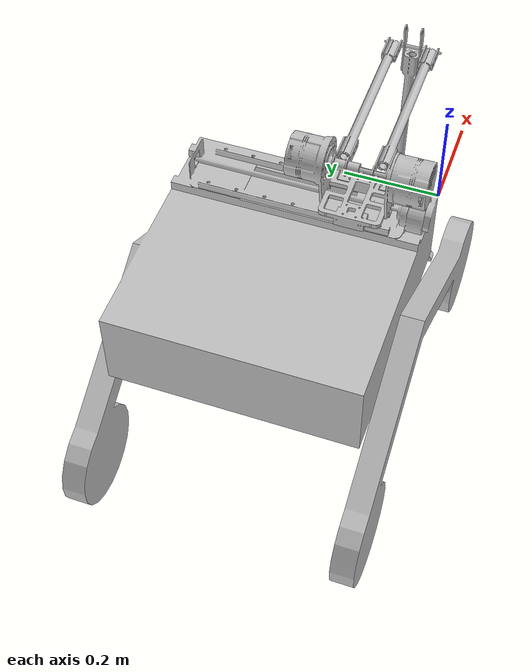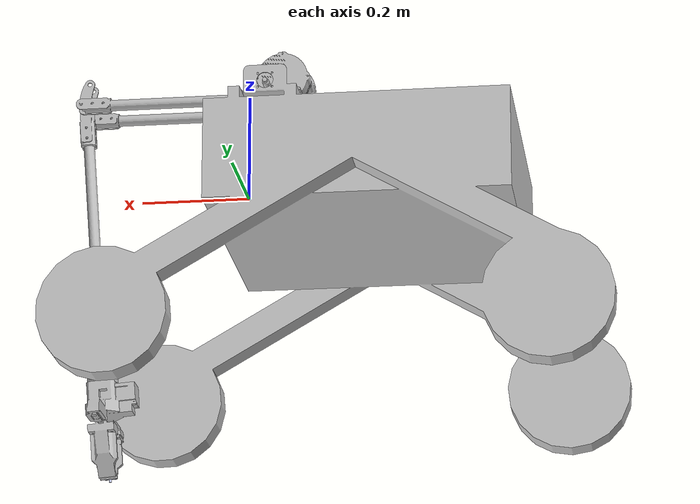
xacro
<?xml version="1.0"?>
<robot xmlns:xacro="http://www.ros.org/wiki/xacro" name="arm_v3">
    <xacro:arg name="initial_positions_file" default="initial_positions.yaml" />

    <!-- Import arm_v3 urdf file -->
    <xacro:include filename="$(find arm_v3)/urdf/arm_v3.urdf" />

    <!-- Import control_xacro -->
    <xacro:include filename="arm_v3.ros2_control.xacro" />

    <xacro:arm_v3_ros2_control name="FakeSystem" initial_positions_file="$(arg initial_positions_file)"/>

</robot>

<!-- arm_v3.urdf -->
<robot
  name="arm_v3">
  <link
    name="link0">
    <inertial>
      <origin
        xyz="-0.251090659205178 0.260128435049847 -0.130847884636194"
        rpy="0 0 0" />
      <mass
        value="60.6958871716405" />
      <inertia
        ixx="2.79606191317483"
        ixy="3.85439821565107E-07"
        ixz="0.0976183373066583"
        iyy="3.07575830053153"
        iyz="4.92814854944356E-07"
        izz="4.35921030434229" />
    </inertial>
    <visual>
      <origin
        xyz="0 0 0"
        rpy="0 0 0" />
      <geometry>
        <mesh
          filename="package://arm_v3/meshes/link0.STL" />
      </geometry>
      <material
        name="">
        <color
          rgba="0.752941176470588 0.752941176470588 0.752941176470588 1" />
      </material>
    </visual>
    <collision>
      <origin
        xyz="0 0 0"
        rpy="0 0 0" />
      <geometry>
        <mesh
          filename="package://arm_v3/meshes/link0.STL" />
      </geometry>
    </collision>
  </link>
  <link
    name="link1">
    <inertial>
      <origin
        xyz="4.0031480939888E-05 -0.035642586815204 0.000678922257745573"
        rpy="0 0 0" />
      <mass
        value="0.478244116351058" />
      <inertia
        ixx="0.000449779643862842"
        ixy="8.4478145908809E-07"
        ixz="-8.12704403358029E-09"
        iyy="0.000588126213744917"
        iyz="1.30199185421708E-08"
        izz="0.000706086171218913" />
    </inertial>
    <visual>
      <origin
        xyz="0 0 0"
        rpy="0 0 0" />
      <geometry>
        <mesh
          filename="package://arm_v3/meshes/link1.STL" />
      </geometry>
      <material
        name="">
        <color
          rgba="0.752941176470588 0.752941176470588 0.752941176470588 1" />
      </material>
    </visual>
    <collision>
      <origin
        xyz="0 0 0"
        rpy="0 0 0" />
      <geometry>
        <mesh
          filename="package://arm_v3/meshes/link1.STL" />
      </geometry>
    </collision>
  </link>
  <joint
    name="Joint1"
    type="prismatic">
    <origin
      xyz="-0.101 0.1416 0.06"
      rpy="-1.5708 0 0" />
    <parent
      link="link0" />
    <child
      link="link1" />
    <axis
      xyz="0 0 1" />
    <limit
      lower="-0.005"
      upper="0.265"
      effort="30"
      velocity="2" />
  </joint>
  <link
    name="link2">
    <inertial>
      <origin
        xyz="0.187948326346529 2.08166817117217E-16 -0.0001721672214893"
        rpy="0 0 0" />
      <mass
        value="0.157877291608978" />
      <inertia
        ixx="2.60456373616675E-05"
        ixy="2.33466430277734E-10"
        ixz="2.27918534324271E-18"
        iyy="0.000848829832045359"
        iyz="-2.97082534014363E-11"
        izz="0.000837396820593812" />
    </inertial>
    <visual>
      <origin
        xyz="0 0 0"
        rpy="0 0 0" />
      <geometry>
        <mesh
          filename="package://arm_v3/meshes/link2.STL" />
      </geometry>
      <material
        name="">
        <color
          rgba="0.752941176470588 0.752941176470588 0.752941176470588 1" />
      </material>
    </visual>
    <collision>
      <origin
        xyz="0 0 0"
        rpy="0 0 0" />
      <geometry>
        <mesh
          filename="package://arm_v3/meshes/link2.STL" />
      </geometry>
    </collision>
  </link>
  <joint
    name="Joint2"
    type="revolute">
    <origin
      xyz="0 -0.067 0"
      rpy="3.1416 0 0" />
    <parent
      link="link1" />
    <child
      link="link2" />
    <axis
      xyz="0 0 1" />
    <limit
      lower="-0.3"
      upper="3.14"
      effort="30"
      velocity="1" />
  </joint>
  <link
    name="link3">
    <inertial>
      <origin
        xyz="0.348175135083634 -4.22417342571951E-05 0.000900843531423862"
        rpy="0 0 0" />
      <mass
        value="0.323819592600619" />
      <inertia
        ixx="0.000134265681035463"
        ixy="-8.93822435553632E-07"
        ixz="2.95002944985626E-07"
        iyy="0.000595550748577075"
        iyz="2.94987492826497E-07"
        izz="0.000616815874843774" />
    </inertial>
    <visual>
      <origin
        xyz="0 0 0"
        rpy="0 0 0" />
      <geometry>
        <mesh
          filename="package://arm_v3/meshes/link3.STL" />
      </geometry>
      <material
        name="">
        <color
          rgba="0.752941176470588 0.752941176470588 0.752941176470588 1" />
      </material>
    </visual>
    <collision>
      <origin
        xyz="0 0 0"
        rpy="0 0 0" />
      <geometry>
        <mesh
          filename="package://arm_v3/meshes/link3.STL" />
      </geometry>
    </collision>
  </link>
  <joint
    name="Joint3"
    type="revolute">
    <origin
      xyz="0.38 0 0"
      rpy="0 0 0" />
    <parent
      link="link2" />
    <child
      link="link3" />
    <axis
      xyz="0 0 1" />
    <limit
      lower="-2.8"
      upper="-0.5"
      effort="30"
      velocity="1" />
  </joint>
  <link
    name="link4">
    <inertial>
      <origin
        xyz="0.0686475844437738 6.89542467470494E-06 0.00534492633402461"
        rpy="0 0 0" />
      <mass
        value="0.0454929980032775" />
      <inertia
        ixx="2.2529161457187E-05"
        ixy="2.89999434352634E-09"
        ixz="3.43437518412773E-06"
        iyy="2.96012406729517E-05"
        iyz="-3.57161747140525E-08"
        izz="2.93547817598039E-05" />
    </inertial>
    <visual>
      <origin
        xyz="0 0 0"
        rpy="0 0 0" />
      <geometry>
        <mesh
          filename="package://arm_v3/meshes/link4.STL" />
      </geometry>
      <material
        name="">
        <color
          rgba="0.752941176470588 0.752941176470588 0.752941176470588 1" />
      </material>
    </visual>
    <collision>
      <origin
        xyz="0 0 0"
        rpy="0 0 0" />
      <geometry>
        <mesh
          filename="package://arm_v3/meshes/link4.STL" />
      </geometry>
    </collision>
  </link>
  <joint
    name="Joint4"
    type="revolute">
    <origin
      xyz="0.42 0 0"
      rpy="0 0 0" />
    <parent
      link="link3" />
    <child
      link="link4" />
    <axis
      xyz="0 0 1" />
    <limit
      lower="-2.34"
      upper="2.34"
      effort="30"
      velocity="1" />
  </joint>
  <link
    name="link5">
    <inertial>
      <origin
        xyz="0.000264785580504856 -0.0107768236032084 0.0946749535225379"
        rpy="0 0 0" />
      <mass
        value="0.329538398062322" />
      <inertia
        ixx="0.000230546266294305"
        ixy="3.01581502188436E-07"
        ixz="1.37509395264184E-07"
        iyy="0.000473403834820231"
        iyz="-1.02601590417029E-05"
        izz="0.000480126563066167" />
    </inertial>
    <visual>
      <origin
        xyz="0 0 0"
        rpy="0 0 0" />
      <geometry>
        <mesh
          filename="package://arm_v3/meshes/link5.STL" />
      </geometry>
      <material
        name="">
        <color
          rgba="0.752941176470588 0.752941176470588 0.752941176470588 1" />
      </material>
    </visual>
    <collision>
      <origin
        xyz="0 0 0"
        rpy="0 0 0" />
      <geometry>
        <mesh
          filename="package://arm_v3/meshes/link5.STL" />
      </geometry>
    </collision>
  </link>
  <joint
    name="Joint5"
    type="continuous">
    <origin
      xyz="0.0405 0 0"
      rpy="0 1.5708 0" />
    <parent
      link="link4" />
    <child
      link="link5" />
    <axis
      xyz="0 0 1" />
    <limit
      lower="-100"
      upper="100"
      effort="30"
      velocity="2" />
  </joint>
  <link
    name="link6">
    <inertial>
      <origin
        xyz="0.021153108358719 0.00021937737665198 -0.066862099604607"
        rpy="0 0 0" />
      <mass
        value="0.0479899579175019" />
      <inertia
        ixx="2.43696645694917E-05"
        ixy="-4.89284253335616E-21"
        ixz="2.92350939700212E-06"
        iyy="2.21626807453364E-05"
        iyz="2.09710323371289E-08"
        izz="1.18502152130745E-05" />
    </inertial>
    <visual>
      <origin
        xyz="0 0 0"
        rpy="0 0 0" />
      <geometry>
        <mesh
          filename="package://arm_v3/meshes/link6.STL" />
      </geometry>
      <material
        name="">
        <color
          rgba="0.752941176470588 0.752941176470588 0.752941176470588 1" />
      </material>
    </visual>
    <collision>
      <origin
        xyz="0 0 0"
        rpy="0 0 0" />
      <geometry>
        <mesh
          filename="package://arm_v3/meshes/link6.STL" />
      </geometry>
    </collision>
  </link>
  <joint
    name="Joint6"
    type="prismatic">
    <origin
      xyz="0.0045 0 0.2282"
      rpy="0 0 0" />
    <parent
      link="link5" />
    <child
      link="link6" />
    <axis
      xyz="1 0 0" />
    <limit
      lower="0"
      upper="0.054"
      effort="30"
      velocity="4" />
    <mimic
      joint="Joint7"
      multiplier="1"
      offset="0" />
  </joint>
  <link
    name="link7">
    <inertial>
      <origin
        xyz="0.0210599721696343 0.000219384673841916 -0.0670349818515534"
        rpy="0 0 0" />
      <mass
        value="0.0482590100516987" />
      <inertia
        ixx="2.40029371617255E-05"
        ixy="-8.2345710853084E-11"
        ixz="2.72664839449111E-06"
        iyy="2.1712774926561E-05"
        iyz="1.81964531031136E-08"
        izz="1.20732312881539E-05" />
    </inertial>
    <visual>
      <origin
        xyz="0 0 0"
        rpy="0 0 0" />
      <geometry>
        <mesh
          filename="package://arm_v3/meshes/link7.STL" />
      </geometry>
      <material
        name="">
        <color
          rgba="0.752941176470588 0.752941176470588 0.752941176470588 1" />
      </material>
    </visual>
    <collision>
      <origin
        xyz="0 0 0"
        rpy="0 0 0" />
      <geometry>
        <mesh
          filename="package://arm_v3/meshes/link7.STL" />
      </geometry>
    </collision>
  </link>
  <joint
    name="Joint7"
    type="prismatic">
    <origin
      xyz="-0.0035 0 0.2282"
      rpy="0 0 -3.1416" />
    <parent
      link="link5" />
    <child
      link="link7" />
    <axis
      xyz="1 0 0" />
    <limit
      lower="0"
      upper="0.054"
      effort="30"
      velocity="1" />
  </joint>
  <link
    name="link8">
    <inertial>
      <origin
        xyz="3.2752E-15 5.0793E-15 -0.022351"
        rpy="0 0 0" />
      <mass
        value="0.011248" />
      <inertia
        ixx="1.2977E-06"
        ixy="-8.2295E-23"
        ixz="-1.3485E-22"
        iyy="1.227E-06"
        iyz="9.0378E-22"
        izz="6.735E-07" />
    </inertial>
    <visual>
      <origin
        xyz="0 0 0"
        rpy="0 0 0" />
      <geometry>
        <mesh
          filename="package://arm_v3/meshes/link8.STL" />
      </geometry>
      <material
        name="">
        <color
          rgba="0.79216 0.81961 0.93333 1" />
      </material>
    </visual>
    <collision>
      <origin
        xyz="0 0 0"
        rpy="0 0 0" />
      <geometry>
        <mesh
          filename="package://arm_v3/meshes/link8.STL" />
      </geometry>
    </collision>
  </link>
  <joint
    name="Joint8"
    type="fixed">
    <origin
      xyz="0.017 0 0.002"
      rpy="0 0 0" />
    <parent
      link="link7" />
    <child
      link="link8" />
    <axis
      xyz="0 0 0" />
  </joint>
</robot>
